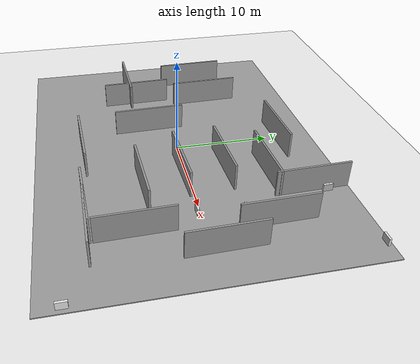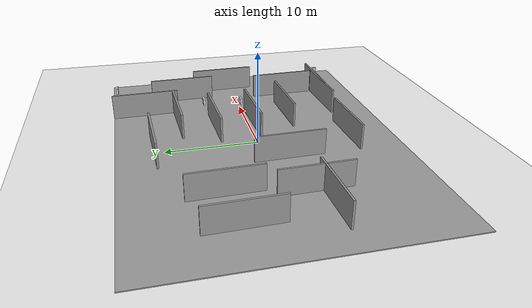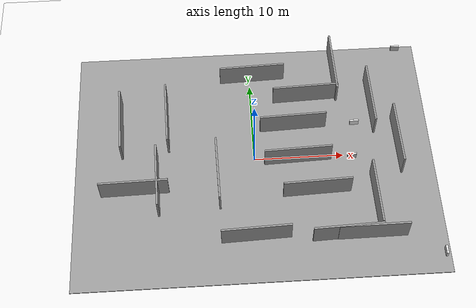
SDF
<sdf version="1.7">
 <world name="default">
  <light name="sun" type="directional">
   <pose>0 0 10 0 -0 0</pose>
   <diffuse>0.8 0.8 0.8 1</diffuse>
   <specular>0.2 0.2 0.2 1</specular>
   <attenuation>
    <range>1000</range>
    <constant>0.9</constant>
    <linear>0.01</linear>
    <quadratic>0.001</quadratic>
   </attenuation>
   <direction>-0.5 0.1 -0.9</direction>
   <spot><inner_angle>0</inner_angle><outer_angle>0</outer_angle><falloff>0</falloff></spot>
  </light>
  <model name="ground_plane">
   <static>1</static>
   <link name="link">
    <collision name="collision">
     <geometry><plane><normal>0 0 1</normal><size>100 100</size></plane></geometry>
     <surface><friction><ode><mu>100</mu><mu2>50</mu2></ode></friction></surface>
    </collision>
    <visual name="visual">
     <cast_shadows>0</cast_shadows>
     <geometry><plane><normal>0 0 1</normal><size>100 100</size></plane></geometry>
     <material>
      <script><uri>file://media/materials/scripts/gazebo.material</uri><name>Gazebo/White</name></script>
     </material>
    </visual>
   </link>
  </model>
  <gravity>0 0 -9.8</gravity>
  <magnetic_field>6e-06 2.3e-05 -4.2e-05</magnetic_field>
  <atmosphere type="adiabatic"/>
  <physics type="ode">
   <max_step_size>0.001</max_step_size>
   <real_time_factor>1</real_time_factor>
   <real_time_update_rate>1000</real_time_update_rate>
  </physics>
  <scene><ambient>0.4 0.4 0.4 1</ambient><background>0.7 0.7 0.7 1</background><shadows>1</shadows></scene>
  <audio><device>default</device></audio>
  <spherical_coordinates>
   <surface_model>EARTH_WGS84</surface_model>
   <latitude_deg>0</latitude_deg>
   <longitude_deg>0</longitude_deg>
   <elevation>0</elevation>
   <heading_deg>0</heading_deg>
  </spherical_coordinates>
  <model name="floor">
   <pose>0 0 0.05 0 -0 0</pose>
   <static>1</static>
   <link name="link">
    <inertial>
     <mass>1</mass>
     <inertia>
      <ixx>0.166667</ixx>
      <ixy>0</ixy>
      <ixz>0</ixz>
      <iyy>0.166667</iyy>
      <iyz>0</iyz>
      <izz>0.166667</izz>
     </inertia>
    </inertial>
    <collision name="collision"><geometry><box><size>40 30 0.1</size></box></geometry></collision>
    <visual name="visual">
     <geometry><box><size>40 30 0.1</size></box></geometry>
     <material>
      <script><name>Gazebo/Grey</name><uri>file://media/materials/scripts/gazebo.material</uri></script>
     </material>
    </visual>
   </link>
  </model>
  <model name="grey_wall">
   <static>1</static>
   <link name="link">
    <pose>0 0 1.4 0 -0 0.1</pose>
    <collision name="collision"><geometry><box><size>7.5 0.2 2.8</size></box></geometry></collision>
    <visual name="visual">
     <cast_shadows>0</cast_shadows>
     <geometry><box><size>7.5 0.2 2.8</size></box></geometry>
     <material>
      <script>
       <uri>model://grey_wall/materials/scripts</uri>
       <uri>model://grey_wall/materials/textures</uri>
       <name>vrc/grey_wall</name>
      </script>
     </material>
    </visual>
   </link>
   <pose>12.0141 -10.3857 0.1 0 0 -0.092931</pose>
  </model>
  <model name="grey_wall_clone">
   <static>1</static>
   <link name="link">
    <pose>0 0 1.4 0 -0 0.1</pose>
    <collision name="collision"><geometry><box><size>7.5 0.2 2.8</size></box></geometry></collision>
    <visual name="visual">
     <cast_shadows>0</cast_shadows>
     <geometry><box><size>7.5 0.2 2.8</size></box></geometry>
     <material>
      <script>
       <uri>model://grey_wall/materials/scripts</uri>
       <uri>model://grey_wall/materials/textures</uri>
       <name>vrc/grey_wall</name>
      </script>
     </material>
    </visual>
   </link>
   <pose>-13.3371 -3.69551 0.1 0 0 -0.080153</pose>
  </model>
  <model name="left_dir_sign">
   <static>1</static>
   <pose>19.5 -12.6831 0.45 0 -0 0</pose>
   <link name="link">
    <inertial>
     <mass>1</mass>
     <inertia>
      <ixx>0.166667</ixx>
      <ixy>0</ixy>
      <ixz>0</ixz>
      <iyy>0.166667</iyy>
      <iyz>0</iyz>
      <izz>0.166667</izz>
     </inertia>
    </inertial>
    <collision name="collision"><geometry><box><size>0.2 1 0.8</size></box></geometry></collision>
    <visual name="visual_body">
     <geometry><box><size>0.2 1 0.8</size></box></geometry>
     <material>
      <script><name>Gazebo/White</name><uri>file://media/materials/scripts/gazebo.material</uri></script>
     </material>
    </visual>
    <visual name="front_face">
     <geometry><box><size>0.01 1 0.8</size></box></geometry>
     <material>
      <script><uri>model://arrow_detection/worlds/map_1_materials</uri><name>right/Diffuse</name></script>
     </material>
     <pose>-0.101 0 0 3.14 -0 0</pose>
    </visual>
   </link>
  </model>
  <model name="grey_wall_clone_clone">
   <static>1</static>
   <link name="link">
    <pose>0 0 1.4 0 -0 0.1</pose>
    <collision name="collision"><geometry><box><size>7.5 0.2 2.8</size></box></geometry></collision>
    <visual name="visual">
     <cast_shadows>0</cast_shadows>
     <geometry><box><size>7.5 0.2 2.8</size></box></geometry>
     <material>
      <script>
       <uri>model://grey_wall/materials/scripts</uri>
       <uri>model://grey_wall/materials/textures</uri>
       <name>vrc/grey_wall</name>
      </script>
     </material>
    </visual>
   </link>
   <pose>-14.8753 4.60534 0.1 0 0 -1.64658</pose>
  </model>
  <model name="grey_wall_clone_clone_clone">
   <static>1</static>
   <link name="link">
    <pose>0 0 1.4 0 -0 0.1</pose>
    <collision name="collision"><geometry><box><size>7.5 0.2 2.8</size></box></geometry></collision>
    <visual name="visual">
     <cast_shadows>0</cast_shadows>
     <geometry><box><size>7.5 0.2 2.8</size></box></geometry>
     <material>
      <script>
       <uri>model://grey_wall/materials/scripts</uri>
       <uri>model://grey_wall/materials/textures</uri>
       <name>vrc/grey_wall</name>
      </script>
     </material>
    </visual>
   </link>
   <pose>-9.68074 5.24499 0.1 0 0 -1.64658</pose>
  </model>
  <model name="grey_wall_clone_clone_clone_0">
   <static>1</static>
   <link name="link">
    <pose>0 0 1.4 0 -0 0.1</pose>
    <collision name="collision"><geometry><box><size>7.5 0.2 2.8</size></box></geometry></collision>
    <visual name="visual">
     <cast_shadows>0</cast_shadows>
     <geometry><box><size>7.5 0.2 2.8</size></box></geometry>
     <material>
      <script>
       <uri>model://grey_wall/materials/scripts</uri>
       <uri>model://grey_wall/materials/textures</uri>
       <name>vrc/grey_wall</name>
      </script>
     </material>
    </visual>
   </link>
   <pose>-4.16896 -2.3534 0.1 0 0 -1.64658</pose>
  </model>
  <model name="grey_wall_clone_clone_clone_1">
   <static>1</static>
   <link name="link">
    <pose>0 0 1.4 0 -0 0.1</pose>
    <collision name="collision"><geometry><box><size>7.5 0.2 2.8</size></box></geometry></collision>
    <visual name="visual">
     <cast_shadows>0</cast_shadows>
     <geometry><box><size>7.5 0.2 2.8</size></box></geometry>
     <material>
      <script>
       <uri>model://grey_wall/materials/scripts</uri>
       <uri>model://grey_wall/materials/textures</uri>
       <name>vrc/grey_wall</name>
      </script>
     </material>
    </visual>
   </link>
   <pose>-10.8188 -2.87486 0.1 0 0 -1.64658</pose>
  </model>
  <model name="grey_wall_clone_0">
   <static>1</static>
   <link name="link">
    <pose>0 0 1.4 0 -0 0.1</pose>
    <collision name="collision"><geometry><box><size>7.5 0.2 2.8</size></box></geometry></collision>
    <visual name="visual">
     <cast_shadows>0</cast_shadows>
     <geometry><box><size>7.5 0.2 2.8</size></box></geometry>
     <material>
      <script>
       <uri>model://grey_wall/materials/scripts</uri>
       <uri>model://grey_wall/materials/textures</uri>
       <name>vrc/grey_wall</name>
      </script>
     </material>
    </visual>
   </link>
   <pose>-0.375656 -9.97704 0.1 0 0 -0.062574</pose>
  </model>
  <model name="grey_wall_clone_1">
   <static>1</static>
   <link name="link">
    <pose>0 0 1.4 0 -0 0.1</pose>
    <collision name="collision"><geometry><box><size>7.5 0.2 2.8</size></box></geometry></collision>
    <visual name="visual">
     <cast_shadows>0</cast_shadows>
     <geometry><box><size>7.5 0.2 2.8</size></box></geometry>
     <material>
      <script>
       <uri>model://grey_wall/materials/scripts</uri>
       <uri>model://grey_wall/materials/textures</uri>
       <name>vrc/grey_wall</name>
      </script>
     </material>
    </visual>
   </link>
   <pose>9.31794 -10.3288 0.1 0 0 -0.062574</pose>
  </model>
  <model name="grey_wall_clone_clone_clone_0_clone">
   <static>1</static>
   <link name="link">
    <pose>0 0 1.4 0 -0 0.1</pose>
    <collision name="collision"><geometry><box><size>7.5 0.2 2.8</size></box></geometry></collision>
    <visual name="visual">
     <cast_shadows>0</cast_shadows>
     <geometry><box><size>7.5 0.2 2.8</size></box></geometry>
     <material>
      <script>
       <uri>model://grey_wall/materials/scripts</uri>
       <uri>model://grey_wall/materials/textures</uri>
       <name>vrc/grey_wall</name>
      </script>
     </material>
    </visual>
   </link>
   <pose>12.8518 -6.21682 0.1 0 0 -1.64658</pose>
  </model>
  <model name="grey_wall_clone_clone_clone_0_clone_0">
   <static>1</static>
   <link name="link">
    <pose>0 0 1.4 0 -0 0.1</pose>
    <collision name="collision"><geometry><box><size>7.5 0.2 2.8</size></box></geometry></collision>
    <visual name="visual">
     <cast_shadows>0</cast_shadows>
     <geometry><box><size>7.5 0.2 2.8</size></box></geometry>
     <material>
      <script>
       <uri>model://grey_wall/materials/scripts</uri>
       <uri>model://grey_wall/materials/textures</uri>
       <name>vrc/grey_wall</name>
      </script>
     </material>
    </visual>
   </link>
   <pose>16.1296 1.03951 0.1 0 0 -1.64658</pose>
  </model>
  <model name="grey_wall_clone_clone_clone_0_clone_1">
   <static>1</static>
   <link name="link">
    <pose>0 0 1.4 0 -0 0.1</pose>
    <collision name="collision"><geometry><box><size>7.5 0.2 2.8</size></box></geometry></collision>
    <visual name="visual">
     <cast_shadows>0</cast_shadows>
     <geometry><box><size>7.5 0.2 2.8</size></box></geometry>
     <material>
      <script>
       <uri>model://grey_wall/materials/scripts</uri>
       <uri>model://grey_wall/materials/textures</uri>
       <name>vrc/grey_wall</name>
      </script>
     </material>
    </visual>
   </link>
   <pose>13.7009 6.5124 0.1 0 0 -1.64658</pose>
  </model>
  <model name="grey_wall_clone_2">
   <static>1</static>
   <link name="link">
    <pose>0 0 1.4 0 -0 0.1</pose>
    <collision name="collision"><geometry><box><size>7.5 0.2 2.8</size></box></geometry></collision>
    <visual name="visual">
     <cast_shadows>0</cast_shadows>
     <geometry><box><size>7.5 0.2 2.8</size></box></geometry>
     <material>
      <script>
       <uri>model://grey_wall/materials/scripts</uri>
       <uri>model://grey_wall/materials/textures</uri>
       <name>vrc/grey_wall</name>
      </script>
     </material>
    </visual>
   </link>
   <pose>6.31492 7.83301 0.1 0 0 -0.062574</pose>
  </model>
  <model name="grey_wall_clone_3">
   <static>1</static>
   <link name="link">
    <pose>0 0 1.4 0 -0 0.1</pose>
    <collision name="collision"><geometry><box><size>7.5 0.2 2.8</size></box></geometry></collision>
    <visual name="visual">
     <cast_shadows>0</cast_shadows>
     <geometry><box><size>7.5 0.2 2.8</size></box></geometry>
     <material>
      <script>
       <uri>model://grey_wall/materials/scripts</uri>
       <uri>model://grey_wall/materials/textures</uri>
       <name>vrc/grey_wall</name>
      </script>
     </material>
    </visual>
   </link>
   <pose>4.58392 3.89293 0.1 0 0 -0.062574</pose>
  </model>
  <model name="grey_wall_clone_clone_clone_0_clone_clone">
   <static>1</static>
   <link name="link">
    <pose>0 0 1.4 0 -0 0.1</pose>
    <collision name="collision"><geometry><box><size>7.5 0.2 2.8</size></box></geometry></collision>
    <visual name="visual">
     <cast_shadows>0</cast_shadows>
     <geometry><box><size>7.5 0.2 2.8</size></box></geometry>
     <material>
      <script>
       <uri>model://grey_wall/materials/scripts</uri>
       <uri>model://grey_wall/materials/textures</uri>
       <name>vrc/grey_wall</name>
      </script>
     </material>
    </visual>
   </link>
   <pose>9.85606 11.2329 0.1 0 0 -1.64658</pose>
  </model>
  <model name="grey_wall_clone_2_clone">
   <static>1</static>
   <link name="link">
    <pose>0 0 1.4 0 -0 0.1</pose>
    <collision name="collision"><geometry><box><size>7.5 0.2 2.8</size></box></geometry></collision>
    <visual name="visual">
     <cast_shadows>0</cast_shadows>
     <geometry><box><size>7.5 0.2 2.8</size></box></geometry>
     <material>
      <script>
       <uri>model://grey_wall/materials/scripts</uri>
       <uri>model://grey_wall/materials/textures</uri>
       <name>vrc/grey_wall</name>
      </script>
     </material>
    </visual>
   </link>
   <pose>0.32639 11.0034 0.1 0 0 -0.062574</pose>
  </model>
  <model name="grey_wall_clone_3_clone">
   <static>1</static>
   <link name="link">
    <pose>0 0 1.4 0 -0 0.1</pose>
    <collision name="collision"><geometry><box><size>7.5 0.2 2.8</size></box></geometry></collision>
    <visual name="visual">
     <cast_shadows>0</cast_shadows>
     <geometry><box><size>7.5 0.2 2.8</size></box></geometry>
     <material>
      <script>
       <uri>model://grey_wall/materials/scripts</uri>
       <uri>model://grey_wall/materials/textures</uri>
       <name>vrc/grey_wall</name>
      </script>
     </material>
    </visual>
   </link>
   <pose>6.58399 -4.73597 0.1 0 0 -0.062574</pose>
  </model>
  <model name="left_dir_sign_clone">
   <static>1</static>
   <pose>17.8614 14.5776 0.45 0 -0 1.55884</pose>
   <link name="link">
    <inertial>
     <mass>1</mass>
     <inertia>
      <ixx>0.166667</ixx>
      <ixy>0</ixy>
      <ixz>0</ixz>
      <iyy>0.166667</iyy>
      <iyz>0</iyz>
      <izz>0.166667</izz>
     </inertia>
    </inertial>
    <collision name="collision"><geometry><box><size>0.2 1 0.8</size></box></geometry></collision>
    <visual name="visual_body">
     <geometry><box><size>0.2 1 0.8</size></box></geometry>
     <material>
      <script><name>Gazebo/White</name><uri>file://media/materials/scripts/gazebo.material</uri></script>
     </material>
    </visual>
    <visual name="front_face">
     <geometry><box><size>0.01 1 0.8</size></box></geometry>
     <material>
      <script><uri>model://arrow_detection/worlds/map_1_materials</uri><name>right/Diffuse</name></script>
     </material>
     <pose>-0.101 0 0 3.14 -0 0</pose>
    </visual>
   </link>
  </model>
  <model name="left_dir_sign_clone_clone">
   <static>1</static>
   <pose>10.1773 12.7252 0.45 0 0 -3.11001</pose>
   <link name="link">
    <inertial>
     <mass>1</mass>
     <inertia>
      <ixx>0.166667</ixx>
      <ixy>0</ixy>
      <ixz>0</ixz>
      <iyy>0.166667</iyy>
      <iyz>0</iyz>
      <izz>0.166667</izz>
     </inertia>
    </inertial>
    <collision name="collision"><geometry><box><size>0.2 1 0.8</size></box></geometry></collision>
    <visual name="visual_body">
     <geometry><box><size>0.2 1 0.8</size></box></geometry>
     <material>
      <script><name>Gazebo/White</name><uri>file://media/materials/scripts/gazebo.material</uri></script>
     </material>
    </visual>
    <visual name="front_face">
     <geometry><box><size>0.01 1 0.8</size></box></geometry>
     <material>
      <script><uri>model://arrow_detection/worlds/map_1_materials</uri><name>right/Diffuse</name></script>
     </material>
     <pose>-0.101 0 0 3.14 -0 0</pose>
    </visual>
   </link>
  </model>
  <model name="left_dir_sign_clone_clone_clone">
   <static>1</static>
   <pose>10.9092 -0.347927 0.45 0 -0 1.6013</pose>
   <link name="link">
    <inertial>
     <mass>1</mass>
     <inertia>
      <ixx>0.166667</ixx>
      <ixy>0</ixy>
      <ixz>0</ixz>
      <iyy>0.166667</iyy>
      <iyz>0</iyz>
      <izz>0.166667</izz>
     </inertia>
    </inertial>
    <collision name="collision"><geometry><box><size>0.2 1 0.8</size></box></geometry></collision>
    <visual name="visual_body">
     <geometry><box><size>0.2 1 0.8</size></box></geometry>
     <material>
      <script><name>Gazebo/White</name><uri>file://media/materials/scripts/gazebo.material</uri></script>
     </material>
    </visual>
    <visual name="front_face">
     <geometry><box><size>0.01 1 0.8</size></box></geometry>
     <material>
      <script><uri>model://arrow_detection/worlds/map_1_materials</uri><name>right/Diffuse</name></script>
     </material>
     <pose>-0.101 0 0 3.14 -0 0</pose>
    </visual>
   </link>
  </model>
  <model name="grey_wall_clone_3_clone_0">
   <static>1</static>
   <link name="link">
    <pose>0 0 1.4 0 -0 0.1</pose>
    <collision name="collision"><geometry><box><size>7.5 0.2 2.8</size></box></geometry></collision>
    <visual name="visual">
     <cast_shadows>0</cast_shadows>
     <geometry><box><size>7.5 0.2 2.8</size></box></geometry>
     <material>
      <script>
       <uri>model://grey_wall/materials/scripts</uri>
       <uri>model://grey_wall/materials/textures</uri>
       <name>vrc/grey_wall</name>
      </script>
     </material>
    </visual>
   </link>
   <pose>4.80698 -0.529441 0.1 0 0 -0.062574</pose>
  </model>
  <model name="left_dir_sign_clone_clone_clone_0">
   <static>1</static>
   <pose>11.6678 4.12024 0.448253 3.14158 -0.004238 -1.53698</pose>
   <link name="link">
    <inertial>
     <mass>1</mass>
     <inertia>
      <ixx>0.166667</ixx>
      <ixy>0</ixy>
      <ixz>0</ixz>
      <iyy>0.166667</iyy>
      <iyz>0</iyz>
      <izz>0.166667</izz>
     </inertia>
    </inertial>
    <collision name="collision"><geometry><box><size>0.2 1 0.8</size></box></geometry></collision>
    <visual name="visual_body">
     <geometry><box><size>0.2 1 0.8</size></box></geometry>
     <material>
      <script><name>Gazebo/White</name><uri>file://media/materials/scripts/gazebo.material</uri></script>
     </material>
    </visual>
    <visual name="front_face">
     <geometry><box><size>0.01 1 0.8</size></box></geometry>
     <material>
      <script><uri>model://arrow_detection/worlds/map_1_materials</uri><name>right/Diffuse</name></script>
     </material>
     <pose>-0.101 0 0 3.14 -0 0</pose>
    </visual>
   </link>
  </model>
 </world>
</sdf>
